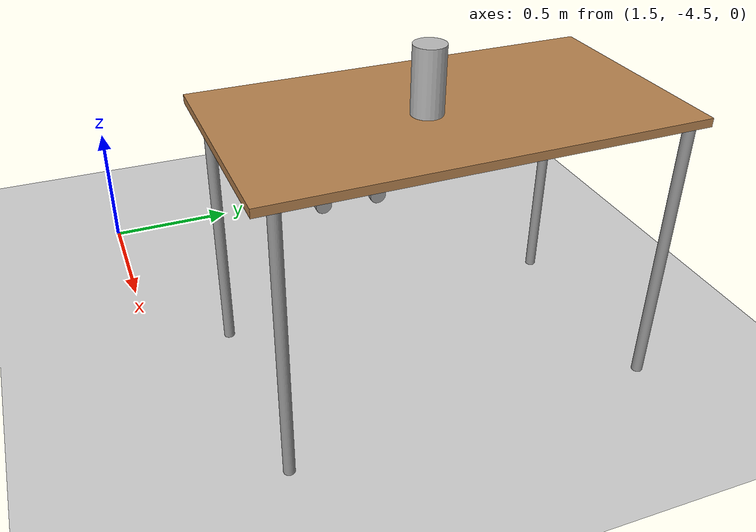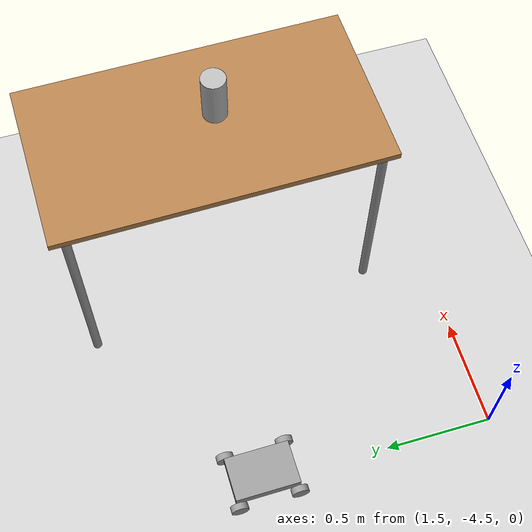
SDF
<sdf version="1.6">
 <world name="default">
  <model name="ground_plane">
   <static>1</static>
   <link name="link">
    <collision name="collision">
     <geometry><plane><normal>0 0 1</normal><size>100 100</size></plane></geometry>
     <surface><friction><ode><mu>100</mu><mu2>50</mu2></ode></friction></surface>
    </collision>
    <visual name="visual">
     <cast_shadows>0</cast_shadows>
     <geometry><plane><normal>0 0 1</normal><size>100 100</size></plane></geometry>
     <material>
      <script><uri>file://media/materials/scripts/gazebo.material</uri><name>Gazebo/Grey</name></script>
     </material>
    </visual>
   </link>
  </model>
  <model name="table">
   <static>1</static>
   <link name="link">
    <collision name="surface">
     <pose>0 0 1 0 -0 0</pose>
     <geometry><box><size>1.5 0.8 0.03</size></box></geometry>
     <surface><friction><ode><mu>0.6</mu><mu2>0.6</mu2></ode></friction></surface>
    </collision>
    <visual name="visual1">
     <pose>0 0 1 0 -0 0</pose>
     <geometry><box><size>1.5 0.8 0.03</size></box></geometry>
     <material>
      <script><uri>file://media/materials/scripts/gazebo.material</uri><name>Gazebo/Wood</name></script>
     </material>
    </visual>
    <collision name="front_left_leg">
     <pose>0.68 0.38 0.5 0 -0 0</pose>
     <geometry><cylinder><radius>0.02</radius><length>1</length></cylinder></geometry>
    </collision>
    <visual name="front_left_leg">
     <pose>0.68 0.38 0.5 0 -0 0</pose>
     <geometry><cylinder><radius>0.02</radius><length>1</length></cylinder></geometry>
     <material>
      <script><uri>file://media/materials/scripts/gazebo.material</uri><name>Gazebo/Grey</name></script>
     </material>
    </visual>
    <collision name="front_right_leg">
     <pose>0.68 -0.38 0.5 0 -0 0</pose>
     <geometry><cylinder><radius>0.02</radius><length>1</length></cylinder></geometry>
    </collision>
    <visual name="front_right_leg">
     <pose>0.68 -0.38 0.5 0 -0 0</pose>
     <geometry><cylinder><radius>0.02</radius><length>1</length></cylinder></geometry>
     <material>
      <script><uri>file://media/materials/scripts/gazebo.material</uri><name>Gazebo/Grey</name></script>
     </material>
    </visual>
    <collision name="back_right_leg">
     <pose>-0.68 -0.38 0.5 0 -0 0</pose>
     <geometry><cylinder><radius>0.02</radius><length>1</length></cylinder></geometry>
    </collision>
    <visual name="back_right_leg">
     <pose>-0.68 -0.38 0.5 0 -0 0</pose>
     <geometry><cylinder><radius>0.02</radius><length>1</length></cylinder></geometry>
     <material>
      <script><uri>file://media/materials/scripts/gazebo.material</uri><name>Gazebo/Grey</name></script>
     </material>
    </visual>
    <collision name="back_left_leg">
     <pose>-0.68 0.38 0.5 0 -0 0</pose>
     <geometry><cylinder><radius>0.02</radius><length>1</length></cylinder></geometry>
    </collision>
    <visual name="back_left_leg">
     <pose>-0.68 0.38 0.5 0 -0 0</pose>
     <geometry><cylinder><radius>0.02</radius><length>1</length></cylinder></geometry>
     <material>
      <script><uri>file://media/materials/scripts/gazebo.material</uri><name>Gazebo/Grey</name></script>
     </material>
    </visual>
   </link>
   <pose>2.77913 -3.51265 0 0 -0 1.58618</pose>
  </model>
  <model name="beer">
   <link name="link">
    <pose>0 0 0.115 0 -0 0</pose>
    <inertial>
     <mass>0.39</mass>
     <inertia><ixx>0.00058</ixx><ixy>0</ixy><ixz>0</ixz><iyy>0.00058</iyy><iyz>0</iyz><izz>0.00019</izz></inertia>
    </inertial>
    <collision name="collision">
     <geometry><cylinder><radius>0.055</radius><length>0.23</length></cylinder></geometry>
    </collision>
    <visual name="visual">
     <geometry><cylinder><radius>0.055</radius><length>0.23</length></cylinder></geometry>
     <material>
      <script>
       <uri>model://beer/materials/scripts</uri>
       <uri>model://beer/materials/textures</uri>
       <name>Beer/Diffuse</name>
      </script>
     </material>
    </visual>
   </link>
   <pose>2.81582 -3.57932 1.015 4e-06 9e-06 0.003847</pose>
  </model>
  <model name="model_0">
   <link name="link_0">
    <pose>0 0 0.03 0 -0 0</pose>
    <inertial>
     <mass>1</mass>
     <inertia>
      <ixx>0.166667</ixx>
      <ixy>0</ixy>
      <ixz>0</ixz>
      <iyy>0.166667</iyy>
      <iyz>0</iyz>
      <izz>0.166667</izz>
     </inertia>
    </inertial>
    <visual name="visual">
     <geometry><box><size>0.3 0.2 0.05</size></box></geometry>
     <material>
      <lighting>1</lighting>
      <script><uri>file://media/materials/scripts/gazebo.material</uri><name>Gazebo/Grey</name></script>
      <shader type="pixel"><normal_map>__default__</normal_map></shader>
      <ambient>0.3 0.3 0.3 1</ambient>
      <diffuse>0.7 0.7 0.7 1</diffuse>
      <specular>0.01 0.01 0.01 1</specular>
      <emissive>0 0 0 1</emissive>
     </material>
    </visual>
    <collision name="collision">
     <geometry><box><size>0.3 0.2 0.05</size></box></geometry>
     <surface>
      <friction>
       <ode><mu>1</mu><mu2>1</mu2><fdir1>0 0 0</fdir1><slip1>0</slip1><slip2>0</slip2></ode>
       <torsional>
        <coefficient>1</coefficient>
        <patch_radius>0</patch_radius>
        <surface_radius>0</surface_radius>
        <use_patch_radius>1</use_patch_radius>
        <ode><slip>0</slip></ode>
       </torsional>
      </friction>
      <bounce><restitution_coefficient>0</restitution_coefficient><threshold>1e+06</threshold></bounce>
      <contact>
       <collide_without_contact>0</collide_without_contact>
       <collide_without_contact_bitmask>1</collide_without_contact_bitmask>
       <collide_bitmask>1</collide_bitmask>
       <ode>
        <soft_cfm>0</soft_cfm>
        <soft_erp>0.2</soft_erp>
        <kp>1e+13</kp>
        <kd>1</kd>
        <max_vel>0.01</max_vel>
        <min_depth>0</min_depth>
       </ode>
       <bullet>
        <split_impulse>1</split_impulse>
        <split_impulse_penetration_threshold>-0.01</split_impulse_penetration_threshold>
        <soft_cfm>0</soft_cfm>
        <soft_erp>0.2</soft_erp>
        <kp>1e+13</kp>
        <kd>1</kd>
       </bullet>
      </contact>
     </surface>
    </collision>
   </link>
   <link name="link_1">
    <pose>-0.14 0 -0.005 1.5708 -0 0</pose>
    <inertial>
     <mass>1</mass>
     <inertia><ixx>0.145833</ixx><ixy>0</ixy><ixz>0</ixz><iyy>0.145833</iyy><iyz>0</iyz><izz>0.125</izz></inertia>
    </inertial>
    <visual name="visual">
     <geometry><cylinder><radius>0.01</radius><length>0.24</length></cylinder></geometry>
     <material>
      <lighting>1</lighting>
      <script><uri>file://media/materials/scripts/gazebo.material</uri><name>Gazebo/Grey</name></script>
      <shader type="pixel"><normal_map>__default__</normal_map></shader>
      <ambient>0.3 0.3 0.3 1</ambient>
      <diffuse>0.7 0.7 0.7 1</diffuse>
      <specular>0.01 0.01 0.01 1</specular>
      <emissive>0 0 0 1</emissive>
     </material>
    </visual>
    <collision name="collision">
     <geometry><cylinder><radius>0.01</radius><length>0.24</length></cylinder></geometry>
     <surface>
      <friction>
       <ode><mu>1</mu><mu2>1</mu2><fdir1>0 0 0</fdir1><slip1>0</slip1><slip2>0</slip2></ode>
       <torsional>
        <coefficient>1</coefficient>
        <patch_radius>0</patch_radius>
        <surface_radius>0</surface_radius>
        <use_patch_radius>1</use_patch_radius>
        <ode><slip>0</slip></ode>
       </torsional>
      </friction>
      <bounce><restitution_coefficient>0</restitution_coefficient><threshold>1e+06</threshold></bounce>
      <contact>
       <collide_without_contact>0</collide_without_contact>
       <collide_without_contact_bitmask>1</collide_without_contact_bitmask>
       <collide_bitmask>1</collide_bitmask>
       <ode>
        <soft_cfm>0</soft_cfm>
        <soft_erp>0.2</soft_erp>
        <kp>1e+13</kp>
        <kd>1</kd>
        <max_vel>0.01</max_vel>
        <min_depth>0</min_depth>
       </ode>
       <bullet>
        <split_impulse>1</split_impulse>
        <split_impulse_penetration_threshold>-0.01</split_impulse_penetration_threshold>
        <soft_cfm>0</soft_cfm>
        <soft_erp>0.2</soft_erp>
        <kp>1e+13</kp>
        <kd>1</kd>
       </bullet>
      </contact>
     </surface>
    </collision>
   </link>
   <link name="link_1_clone">
    <pose>0.14 0 -0.005 1.5708 -0 0</pose>
    <inertial>
     <mass>1</mass>
     <inertia><ixx>0.145833</ixx><ixy>0</ixy><ixz>0</ixz><iyy>0.145833</iyy><iyz>0</iyz><izz>0.125</izz></inertia>
    </inertial>
    <visual name="visual">
     <geometry><cylinder><radius>0.01</radius><length>0.24</length></cylinder></geometry>
     <material>
      <lighting>1</lighting>
      <script><uri>file://media/materials/scripts/gazebo.material</uri><name>Gazebo/Grey</name></script>
      <shader type="pixel"><normal_map>__default__</normal_map></shader>
      <ambient>0.3 0.3 0.3 1</ambient>
      <diffuse>0.7 0.7 0.7 1</diffuse>
      <specular>0.01 0.01 0.01 1</specular>
      <emissive>0 0 0 1</emissive>
     </material>
    </visual>
    <collision name="collision">
     <geometry><cylinder><radius>0.01</radius><length>0.24</length></cylinder></geometry>
     <surface>
      <friction>
       <ode><mu>1</mu><mu2>1</mu2><fdir1>0 0 0</fdir1><slip1>0</slip1><slip2>0</slip2></ode>
       <torsional>
        <coefficient>1</coefficient>
        <patch_radius>0</patch_radius>
        <surface_radius>0</surface_radius>
        <use_patch_radius>1</use_patch_radius>
        <ode><slip>0</slip></ode>
       </torsional>
      </friction>
      <bounce><restitution_coefficient>0</restitution_coefficient><threshold>1e+06</threshold></bounce>
      <contact>
       <collide_without_contact>0</collide_without_contact>
       <collide_without_contact_bitmask>1</collide_without_contact_bitmask>
       <collide_bitmask>1</collide_bitmask>
       <ode>
        <soft_cfm>0</soft_cfm>
        <soft_erp>0.2</soft_erp>
        <kp>1e+13</kp>
        <kd>1</kd>
        <max_vel>0.01</max_vel>
        <min_depth>0</min_depth>
       </ode>
       <bullet>
        <split_impulse>1</split_impulse>
        <split_impulse_penetration_threshold>-0.01</split_impulse_penetration_threshold>
        <soft_cfm>0</soft_cfm>
        <soft_erp>0.2</soft_erp>
        <kp>1e+13</kp>
        <kd>1</kd>
       </bullet>
      </contact>
     </surface>
    </collision>
   </link>
   <link name="link_2">
    <pose>0.14 -0.12 -0.005 1.5708 -0 0</pose>
    <inertial>
     <mass>1</mass>
     <inertia><ixx>0.145833</ixx><ixy>0</ixy><ixz>0</ixz><iyy>0.145833</iyy><iyz>0</iyz><izz>0.125</izz></inertia>
    </inertial>
    <visual name="visual">
     <geometry><cylinder><radius>0.04</radius><length>0.03</length></cylinder></geometry>
     <material>
      <lighting>1</lighting>
      <script><uri>file://media/materials/scripts/gazebo.material</uri><name>Gazebo/Grey</name></script>
      <shader type="pixel"><normal_map>__default__</normal_map></shader>
      <ambient>0.3 0.3 0.3 1</ambient>
      <diffuse>0.7 0.7 0.7 1</diffuse>
      <specular>0.01 0.01 0.01 1</specular>
      <emissive>0 0 0 1</emissive>
     </material>
    </visual>
    <collision name="collision">
     <geometry><cylinder><radius>0.04</radius><length>0.03</length></cylinder></geometry>
     <surface>
      <friction>
       <ode><mu>1</mu><mu2>1</mu2><fdir1>0 0 0</fdir1><slip1>0</slip1><slip2>0</slip2></ode>
       <torsional>
        <coefficient>1</coefficient>
        <patch_radius>0</patch_radius>
        <surface_radius>0</surface_radius>
        <use_patch_radius>1</use_patch_radius>
        <ode><slip>0</slip></ode>
       </torsional>
      </friction>
      <bounce><restitution_coefficient>0</restitution_coefficient><threshold>1e+06</threshold></bounce>
      <contact>
       <collide_without_contact>0</collide_without_contact>
       <collide_without_contact_bitmask>1</collide_without_contact_bitmask>
       <collide_bitmask>1</collide_bitmask>
       <ode>
        <soft_cfm>0</soft_cfm>
        <soft_erp>0.2</soft_erp>
        <kp>1e+13</kp>
        <kd>1</kd>
        <max_vel>0.01</max_vel>
        <min_depth>0</min_depth>
       </ode>
       <bullet>
        <split_impulse>1</split_impulse>
        <split_impulse_penetration_threshold>-0.01</split_impulse_penetration_threshold>
        <soft_cfm>0</soft_cfm>
        <soft_erp>0.2</soft_erp>
        <kp>1e+13</kp>
        <kd>1</kd>
       </bullet>
      </contact>
     </surface>
    </collision>
   </link>
   <link name="link_2_clone">
    <pose>0.14 0.12 -0.005 1.5708 -0 0</pose>
    <inertial>
     <mass>1</mass>
     <inertia><ixx>0.145833</ixx><ixy>0</ixy><ixz>0</ixz><iyy>0.145833</iyy><iyz>0</iyz><izz>0.125</izz></inertia>
    </inertial>
    <visual name="visual">
     <geometry><cylinder><radius>0.04</radius><length>0.03</length></cylinder></geometry>
     <material>
      <lighting>1</lighting>
      <script><uri>file://media/materials/scripts/gazebo.material</uri><name>Gazebo/Grey</name></script>
      <shader type="pixel"><normal_map>__default__</normal_map></shader>
      <ambient>0.3 0.3 0.3 1</ambient>
      <diffuse>0.7 0.7 0.7 1</diffuse>
      <specular>0.01 0.01 0.01 1</specular>
      <emissive>0 0 0 1</emissive>
     </material>
    </visual>
    <collision name="collision">
     <geometry><cylinder><radius>0.04</radius><length>0.03</length></cylinder></geometry>
     <surface>
      <friction>
       <ode><mu>1</mu><mu2>1</mu2><fdir1>0 0 0</fdir1><slip1>0</slip1><slip2>0</slip2></ode>
       <torsional>
        <coefficient>1</coefficient>
        <patch_radius>0</patch_radius>
        <surface_radius>0</surface_radius>
        <use_patch_radius>1</use_patch_radius>
        <ode><slip>0</slip></ode>
       </torsional>
      </friction>
      <bounce><restitution_coefficient>0</restitution_coefficient><threshold>1e+06</threshold></bounce>
      <contact>
       <collide_without_contact>0</collide_without_contact>
       <collide_without_contact_bitmask>1</collide_without_contact_bitmask>
       <collide_bitmask>1</collide_bitmask>
       <ode>
        <soft_cfm>0</soft_cfm>
        <soft_erp>0.2</soft_erp>
        <kp>1e+13</kp>
        <kd>1</kd>
        <max_vel>0.01</max_vel>
        <min_depth>0</min_depth>
       </ode>
       <bullet>
        <split_impulse>1</split_impulse>
        <split_impulse_penetration_threshold>-0.01</split_impulse_penetration_threshold>
        <soft_cfm>0</soft_cfm>
        <soft_erp>0.2</soft_erp>
        <kp>1e+13</kp>
        <kd>1</kd>
       </bullet>
      </contact>
     </surface>
    </collision>
   </link>
   <link name="link_2_clone_0">
    <pose>-0.14 -0.12 -0.005 1.5708 -0 0</pose>
    <inertial>
     <mass>1</mass>
     <inertia><ixx>0.145833</ixx><ixy>0</ixy><ixz>0</ixz><iyy>0.145833</iyy><iyz>0</iyz><izz>0.125</izz></inertia>
    </inertial>
    <visual name="visual">
     <geometry><cylinder><radius>0.04</radius><length>0.03</length></cylinder></geometry>
     <material>
      <lighting>1</lighting>
      <script><uri>file://media/materials/scripts/gazebo.material</uri><name>Gazebo/Grey</name></script>
      <shader type="pixel"><normal_map>__default__</normal_map></shader>
      <ambient>0.3 0.3 0.3 1</ambient>
      <diffuse>0.7 0.7 0.7 1</diffuse>
      <specular>0.01 0.01 0.01 1</specular>
      <emissive>0 0 0 1</emissive>
     </material>
    </visual>
    <collision name="collision">
     <geometry><cylinder><radius>0.04</radius><length>0.03</length></cylinder></geometry>
     <surface>
      <friction>
       <ode><mu>1</mu><mu2>1</mu2><fdir1>0 0 0</fdir1><slip1>0</slip1><slip2>0</slip2></ode>
       <torsional>
        <coefficient>1</coefficient>
        <patch_radius>0</patch_radius>
        <surface_radius>0</surface_radius>
        <use_patch_radius>1</use_patch_radius>
        <ode><slip>0</slip></ode>
       </torsional>
      </friction>
      <bounce><restitution_coefficient>0</restitution_coefficient><threshold>1e+06</threshold></bounce>
      <contact>
       <collide_without_contact>0</collide_without_contact>
       <collide_without_contact_bitmask>1</collide_without_contact_bitmask>
       <collide_bitmask>1</collide_bitmask>
       <ode>
        <soft_cfm>0</soft_cfm>
        <soft_erp>0.2</soft_erp>
        <kp>1e+13</kp>
        <kd>1</kd>
        <max_vel>0.01</max_vel>
        <min_depth>0</min_depth>
       </ode>
       <bullet>
        <split_impulse>1</split_impulse>
        <split_impulse_penetration_threshold>-0.01</split_impulse_penetration_threshold>
        <soft_cfm>0</soft_cfm>
        <soft_erp>0.2</soft_erp>
        <kp>1e+13</kp>
        <kd>1</kd>
       </bullet>
      </contact>
     </surface>
    </collision>
   </link>
   <link name="link_2_clone_0_clone">
    <pose>-0.14 0.12 -0.005 1.5708 -0 0</pose>
    <inertial>
     <mass>1</mass>
     <inertia><ixx>0.145833</ixx><ixy>0</ixy><ixz>0</ixz><iyy>0.145833</iyy><iyz>0</iyz><izz>0.125</izz></inertia>
    </inertial>
    <visual name="visual">
     <geometry><cylinder><radius>0.04</radius><length>0.03</length></cylinder></geometry>
     <material>
      <lighting>1</lighting>
      <script><uri>file://media/materials/scripts/gazebo.material</uri><name>Gazebo/Grey</name></script>
      <shader type="pixel"><normal_map>__default__</normal_map></shader>
      <ambient>0.3 0.3 0.3 1</ambient>
      <diffuse>0.7 0.7 0.7 1</diffuse>
      <specular>0.01 0.01 0.01 1</specular>
      <emissive>0 0 0 1</emissive>
     </material>
    </visual>
    <collision name="collision">
     <geometry><cylinder><radius>0.04</radius><length>0.03</length></cylinder></geometry>
     <surface>
      <friction>
       <ode><mu>1</mu><mu2>1</mu2><fdir1>0 0 0</fdir1><slip1>0</slip1><slip2>0</slip2></ode>
       <torsional>
        <coefficient>1</coefficient>
        <patch_radius>0</patch_radius>
        <surface_radius>0</surface_radius>
        <use_patch_radius>1</use_patch_radius>
        <ode><slip>0</slip></ode>
       </torsional>
      </friction>
      <bounce><restitution_coefficient>0</restitution_coefficient><threshold>1e+06</threshold></bounce>
      <contact>
       <collide_without_contact>0</collide_without_contact>
       <collide_without_contact_bitmask>1</collide_without_contact_bitmask>
       <collide_bitmask>1</collide_bitmask>
       <ode>
        <soft_cfm>0</soft_cfm>
        <soft_erp>0.2</soft_erp>
        <kp>1e+13</kp>
        <kd>1</kd>
        <max_vel>0.01</max_vel>
        <min_depth>0</min_depth>
       </ode>
       <bullet>
        <split_impulse>1</split_impulse>
        <split_impulse_penetration_threshold>-0.01</split_impulse_penetration_threshold>
        <soft_cfm>0</soft_cfm>
        <soft_erp>0.2</soft_erp>
        <kp>1e+13</kp>
        <kd>1</kd>
       </bullet>
      </contact>
     </surface>
    </collision>
   </link>
   <joint name="link_0_JOINT_3" type="fixed">
    <parent>link_0</parent>
    <child>link_1</child>
    <physics>
     <ode><limit><cfm>0</cfm><erp>0.2</erp></limit><suspension><cfm>0</cfm><erp>0.2</erp></suspension></ode>
    </physics>
   </joint>
   <joint name="link_0_JOINT_5" type="fixed">
    <parent>link_0</parent>
    <child>link_1_clone</child>
    <physics>
     <ode><limit><cfm>0</cfm><erp>0.2</erp></limit><suspension><cfm>0</cfm><erp>0.2</erp></suspension></ode>
    </physics>
   </joint>
   <joint name="link_1_JOINT_10" type="revolute">
    <parent>link_1</parent>
    <child>link_2_clone_0_clone</child>
    <axis>
     <xyz>0 0 1</xyz>
     <use_parent_model_frame>0</use_parent_model_frame>
     <limit>
      <lower>-1.79769e+308</lower>
      <upper>1.79769e+308</upper>
      <effort>-1</effort>
      <velocity>-1</velocity>
     </limit>
     <dynamics>
      <spring_reference>0</spring_reference>
      <spring_stiffness>0</spring_stiffness>
      <damping>0</damping>
     </dynamics>
    </axis>
    <physics>
     <ode><limit><cfm>0</cfm><erp>0.2</erp></limit><suspension><cfm>0</cfm><erp>0.2</erp></suspension></ode>
    </physics>
   </joint>
   <joint name="link_1_JOINT_9" type="revolute">
    <parent>link_1</parent>
    <child>link_2_clone_0</child>
    <axis>
     <xyz>0 0 1</xyz>
     <use_parent_model_frame>0</use_parent_model_frame>
     <limit>
      <lower>-1.79769e+308</lower>
      <upper>1.79769e+308</upper>
      <effort>-1</effort>
      <velocity>-1</velocity>
     </limit>
     <dynamics>
      <spring_reference>0</spring_reference>
      <spring_stiffness>0</spring_stiffness>
      <damping>0</damping>
     </dynamics>
    </axis>
    <physics>
     <ode><limit><cfm>0</cfm><erp>0.2</erp></limit><suspension><cfm>0</cfm><erp>0.2</erp></suspension></ode>
    </physics>
   </joint>
   <joint name="link_1_clone_JOINT_7" type="revolute">
    <parent>link_1_clone</parent>
    <child>link_2</child>
    <axis>
     <xyz>0 0 1</xyz>
     <use_parent_model_frame>0</use_parent_model_frame>
     <limit>
      <lower>-1.79769e+308</lower>
      <upper>1.79769e+308</upper>
      <effort>-1</effort>
      <velocity>-1</velocity>
     </limit>
     <dynamics>
      <spring_reference>0</spring_reference>
      <spring_stiffness>0</spring_stiffness>
      <damping>0</damping>
     </dynamics>
    </axis>
    <physics>
     <ode><limit><cfm>0</cfm><erp>0.2</erp></limit><suspension><cfm>0</cfm><erp>0.2</erp></suspension></ode>
    </physics>
   </joint>
   <joint name="link_1_clone_JOINT_8" type="revolute">
    <parent>link_1_clone</parent>
    <child>link_2_clone</child>
    <axis>
     <xyz>0 0 1</xyz>
     <use_parent_model_frame>0</use_parent_model_frame>
     <limit>
      <lower>-1.79769e+308</lower>
      <upper>1.79769e+308</upper>
      <effort>-1</effort>
      <velocity>-1</velocity>
     </limit>
     <dynamics>
      <spring_reference>0</spring_reference>
      <spring_stiffness>0</spring_stiffness>
      <damping>0</damping>
      <friction>0</friction>
     </dynamics>
    </axis>
    <physics>
     <ode><limit><cfm>0</cfm><erp>0.2</erp></limit><suspension><cfm>0</cfm><erp>0.2</erp></suspension></ode>
    </physics>
   </joint>
   <static>0</static>
   <pose>1.53364 -3.41185 0.045 1e-06 1e-06 -1.566</pose>
  </model>
 </world>
</sdf>
